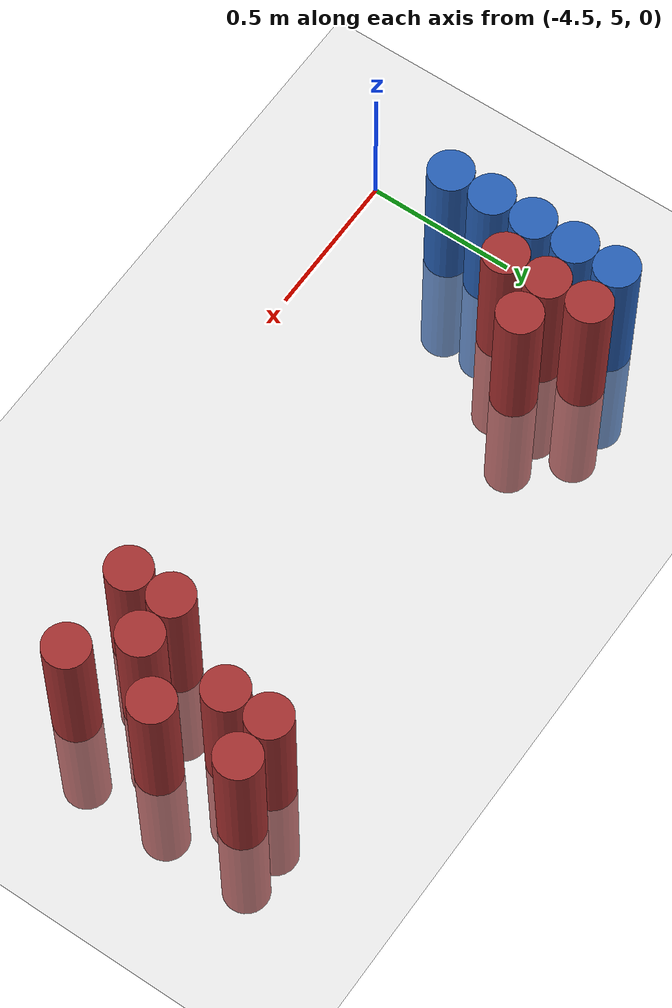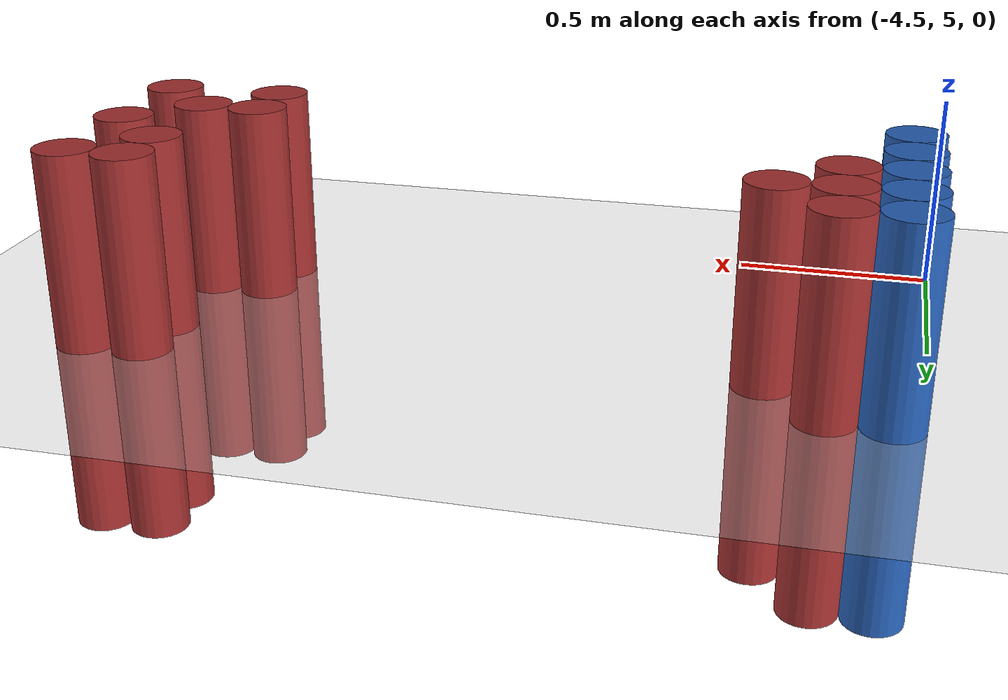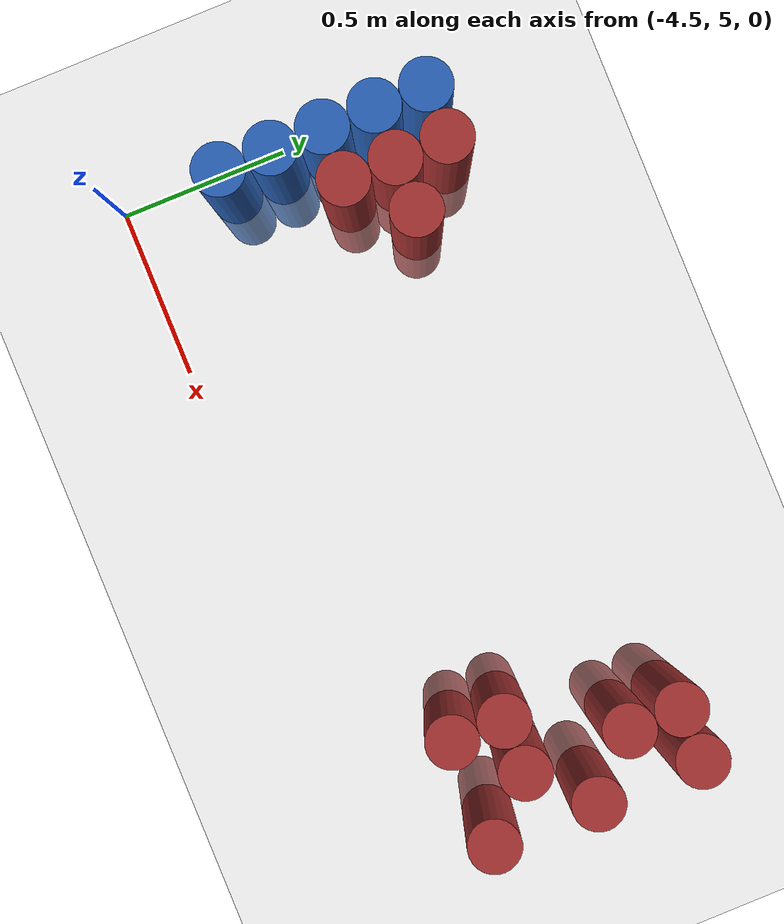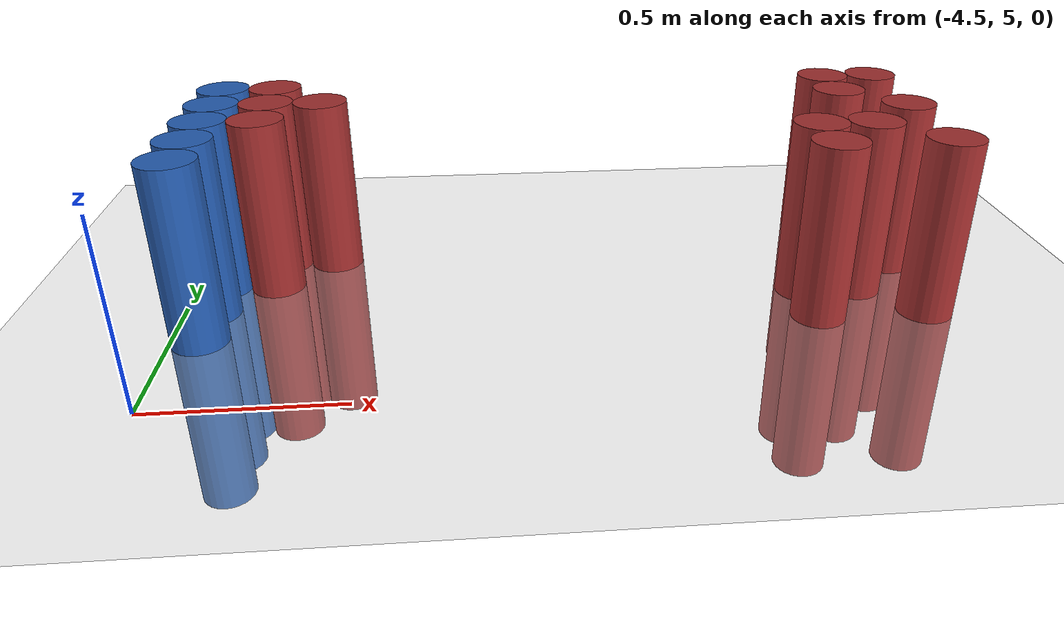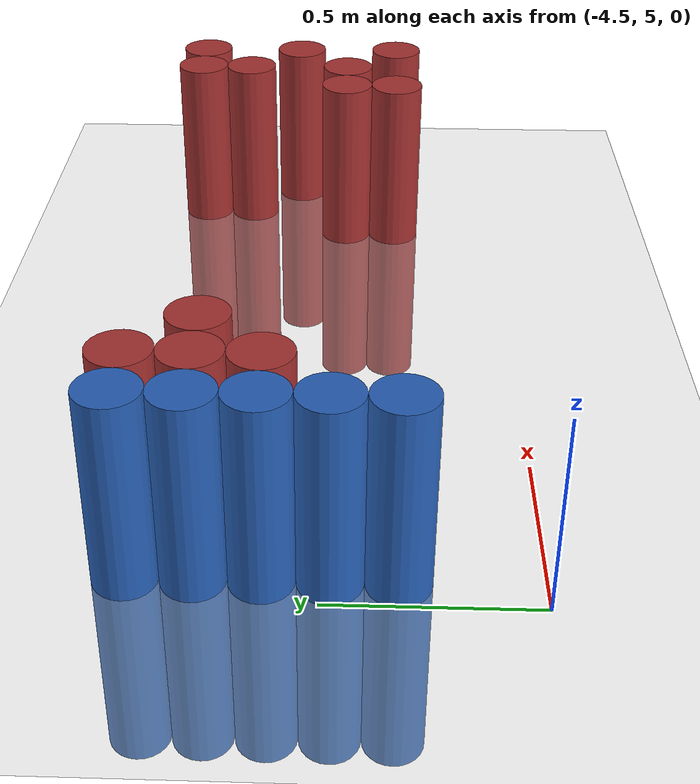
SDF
<sdf version="1.6">
 <world name="default">
  <model name="ground_plane">
   <static>1</static>
   <link name="link">
    <collision name="collision">
     <geometry><plane><normal>0 0 1</normal><size>100 100</size></plane></geometry>
     <surface><friction><ode><mu>100</mu><mu2>50</mu2></ode></friction></surface>
    </collision>
    <visual name="visual">
     <cast_shadows>0</cast_shadows>
     <geometry><plane><normal>0 0 1</normal><size>100 100</size></plane></geometry>
     <material>
      <script><uri>file://media/materials/scripts/gazebo.material</uri><name>Gazebo/Grey</name></script>
     </material>
    </visual>
   </link>
  </model>
  <model name="unit_cylinder_97">
   <static>1</static>
   <pose>-4.425000 5.325000 0.000000 0.000000 0.000000 0.000000</pose>
   <link name="link">
    <inertial>
     <mass>1</mass>
     <inertia><ixx>0.145833</ixx><ixy>0</ixy><ixz>0</ixz><iyy>0.145833</iyy><iyz>0</iyz><izz>0.125</izz></inertia>
    </inertial>
    <collision name="collision">
     <geometry><cylinder><radius>0.075000</radius><length>1</length></cylinder></geometry>
    </collision>
    <visual name="visual">
     <geometry><cylinder><radius>0.075000</radius><length>1</length></cylinder></geometry>
     <material>
      <ambient>0.152000 0.379000 0.720000 1</ambient>
      <diffuse>0.152000 0.379000 0.720000 1</diffuse>
     </material>
     <material>
      <script><name>Gazebo/Grey</name><uri>file://media/materials/scripts/gazebo.material</uri></script>
     </material>
    </visual>
   </link>
  </model>
  <model name="unit_cylinder_98">
   <static>1</static>
   <pose>-4.425000 5.475000 0.000000 0.000000 0.000000 0.000000</pose>
   <link name="link">
    <inertial>
     <mass>1</mass>
     <inertia><ixx>0.145833</ixx><ixy>0</ixy><ixz>0</ixz><iyy>0.145833</iyy><iyz>0</iyz><izz>0.125</izz></inertia>
    </inertial>
    <collision name="collision">
     <geometry><cylinder><radius>0.075000</radius><length>1</length></cylinder></geometry>
    </collision>
    <visual name="visual">
     <geometry><cylinder><radius>0.075000</radius><length>1</length></cylinder></geometry>
     <material>
      <ambient>0.152000 0.379000 0.720000 1</ambient>
      <diffuse>0.152000 0.379000 0.720000 1</diffuse>
     </material>
     <material>
      <script><name>Gazebo/Grey</name><uri>file://media/materials/scripts/gazebo.material</uri></script>
     </material>
    </visual>
   </link>
  </model>
  <model name="unit_cylinder_99">
   <static>1</static>
   <pose>-4.425000 5.625000 0.000000 0.000000 0.000000 0.000000</pose>
   <link name="link">
    <inertial>
     <mass>1</mass>
     <inertia><ixx>0.145833</ixx><ixy>0</ixy><ixz>0</ixz><iyy>0.145833</iyy><iyz>0</iyz><izz>0.125</izz></inertia>
    </inertial>
    <collision name="collision">
     <geometry><cylinder><radius>0.075000</radius><length>1</length></cylinder></geometry>
    </collision>
    <visual name="visual">
     <geometry><cylinder><radius>0.075000</radius><length>1</length></cylinder></geometry>
     <material>
      <ambient>0.152000 0.379000 0.720000 1</ambient>
      <diffuse>0.152000 0.379000 0.720000 1</diffuse>
     </material>
     <material>
      <script><name>Gazebo/Grey</name><uri>file://media/materials/scripts/gazebo.material</uri></script>
     </material>
    </visual>
   </link>
  </model>
  <model name="unit_cylinder_100">
   <static>1</static>
   <pose>-4.425000 5.775000 0.000000 0.000000 0.000000 0.000000</pose>
   <link name="link">
    <inertial>
     <mass>1</mass>
     <inertia><ixx>0.145833</ixx><ixy>0</ixy><ixz>0</ixz><iyy>0.145833</iyy><iyz>0</iyz><izz>0.125</izz></inertia>
    </inertial>
    <collision name="collision">
     <geometry><cylinder><radius>0.075000</radius><length>1</length></cylinder></geometry>
    </collision>
    <visual name="visual">
     <geometry><cylinder><radius>0.075000</radius><length>1</length></cylinder></geometry>
     <material>
      <ambient>0.152000 0.379000 0.720000 1</ambient>
      <diffuse>0.152000 0.379000 0.720000 1</diffuse>
     </material>
     <material>
      <script><name>Gazebo/Grey</name><uri>file://media/materials/scripts/gazebo.material</uri></script>
     </material>
    </visual>
   </link>
  </model>
  <model name="unit_cylinder_101">
   <static>1</static>
   <pose>-4.425000 5.925000 0.000000 0.000000 0.000000 0.000000</pose>
   <link name="link">
    <inertial>
     <mass>1</mass>
     <inertia><ixx>0.145833</ixx><ixy>0</ixy><ixz>0</ixz><iyy>0.145833</iyy><iyz>0</iyz><izz>0.125</izz></inertia>
    </inertial>
    <collision name="collision">
     <geometry><cylinder><radius>0.075000</radius><length>1</length></cylinder></geometry>
    </collision>
    <visual name="visual">
     <geometry><cylinder><radius>0.075000</radius><length>1</length></cylinder></geometry>
     <material>
      <ambient>0.152000 0.379000 0.720000 1</ambient>
      <diffuse>0.152000 0.379000 0.720000 1</diffuse>
     </material>
     <material>
      <script><name>Gazebo/Grey</name><uri>file://media/materials/scripts/gazebo.material</uri></script>
     </material>
    </visual>
   </link>
  </model>
  <model name="unit_cylinder_126">
   <static>1</static>
   <pose>-4.275000 5.625000 0.000000 0.000000 0.000000 0.000000</pose>
   <link name="link">
    <inertial>
     <mass>1</mass>
     <inertia><ixx>0.145833</ixx><ixy>0</ixy><ixz>0</ixz><iyy>0.145833</iyy><iyz>0</iyz><izz>0.125</izz></inertia>
    </inertial>
    <collision name="collision">
     <geometry><cylinder><radius>0.075000</radius><length>1</length></cylinder></geometry>
    </collision>
    <visual name="visual">
     <geometry><cylinder><radius>0.075000</radius><length>1</length></cylinder></geometry>
     <material>
      <ambient>0.648000 0.192000 0.192000 1</ambient>
      <diffuse>0.648000 0.192000 0.192000 1</diffuse>
     </material>
     <material>
      <script><name>Gazebo/Grey</name><uri>file://media/materials/scripts/gazebo.material</uri></script>
     </material>
    </visual>
   </link>
  </model>
  <model name="unit_cylinder_127">
   <static>1</static>
   <pose>-4.275000 5.775000 0.000000 0.000000 0.000000 0.000000</pose>
   <link name="link">
    <inertial>
     <mass>1</mass>
     <inertia><ixx>0.145833</ixx><ixy>0</ixy><ixz>0</ixz><iyy>0.145833</iyy><iyz>0</iyz><izz>0.125</izz></inertia>
    </inertial>
    <collision name="collision">
     <geometry><cylinder><radius>0.075000</radius><length>1</length></cylinder></geometry>
    </collision>
    <visual name="visual">
     <geometry><cylinder><radius>0.075000</radius><length>1</length></cylinder></geometry>
     <material>
      <ambient>0.648000 0.192000 0.192000 1</ambient>
      <diffuse>0.648000 0.192000 0.192000 1</diffuse>
     </material>
     <material>
      <script><name>Gazebo/Grey</name><uri>file://media/materials/scripts/gazebo.material</uri></script>
     </material>
    </visual>
   </link>
  </model>
  <model name="unit_cylinder_128">
   <static>1</static>
   <pose>-4.275000 5.925000 0.000000 0.000000 0.000000 0.000000</pose>
   <link name="link">
    <inertial>
     <mass>1</mass>
     <inertia><ixx>0.145833</ixx><ixy>0</ixy><ixz>0</ixz><iyy>0.145833</iyy><iyz>0</iyz><izz>0.125</izz></inertia>
    </inertial>
    <collision name="collision">
     <geometry><cylinder><radius>0.075000</radius><length>1</length></cylinder></geometry>
    </collision>
    <visual name="visual">
     <geometry><cylinder><radius>0.075000</radius><length>1</length></cylinder></geometry>
     <material>
      <ambient>0.648000 0.192000 0.192000 1</ambient>
      <diffuse>0.648000 0.192000 0.192000 1</diffuse>
     </material>
     <material>
      <script><name>Gazebo/Grey</name><uri>file://media/materials/scripts/gazebo.material</uri></script>
     </material>
    </visual>
   </link>
  </model>
  <model name="unit_cylinder_143">
   <static>1</static>
   <pose>-4.125000 5.775000 0.000000 0.000000 0.000000 0.000000</pose>
   <link name="link">
    <inertial>
     <mass>1</mass>
     <inertia><ixx>0.145833</ixx><ixy>0</ixy><ixz>0</ixz><iyy>0.145833</iyy><iyz>0</iyz><izz>0.125</izz></inertia>
    </inertial>
    <collision name="collision">
     <geometry><cylinder><radius>0.075000</radius><length>1</length></cylinder></geometry>
    </collision>
    <visual name="visual">
     <geometry><cylinder><radius>0.075000</radius><length>1</length></cylinder></geometry>
     <material>
      <ambient>0.648000 0.192000 0.192000 1</ambient>
      <diffuse>0.648000 0.192000 0.192000 1</diffuse>
     </material>
     <material>
      <script><name>Gazebo/Grey</name><uri>file://media/materials/scripts/gazebo.material</uri></script>
     </material>
    </visual>
   </link>
  </model>
  <model name="unit_cylinder_182">
   <static>1</static>
   <pose>-2.775000 5.325000 0.000000 0.000000 0.000000 0.000000</pose>
   <link name="link">
    <inertial>
     <mass>1</mass>
     <inertia><ixx>0.145833</ixx><ixy>0</ixy><ixz>0</ixz><iyy>0.145833</iyy><iyz>0</iyz><izz>0.125</izz></inertia>
    </inertial>
    <collision name="collision">
     <geometry><cylinder><radius>0.075000</radius><length>1</length></cylinder></geometry>
    </collision>
    <visual name="visual">
     <geometry><cylinder><radius>0.075000</radius><length>1</length></cylinder></geometry>
     <material>
      <ambient>0.648000 0.192000 0.192000 1</ambient>
      <diffuse>0.648000 0.192000 0.192000 1</diffuse>
     </material>
     <material>
      <script><name>Gazebo/Grey</name><uri>file://media/materials/scripts/gazebo.material</uri></script>
     </material>
    </visual>
   </link>
  </model>
  <model name="unit_cylinder_183">
   <static>1</static>
   <pose>-2.775000 5.475000 0.000000 0.000000 0.000000 0.000000</pose>
   <link name="link">
    <inertial>
     <mass>1</mass>
     <inertia><ixx>0.145833</ixx><ixy>0</ixy><ixz>0</ixz><iyy>0.145833</iyy><iyz>0</iyz><izz>0.125</izz></inertia>
    </inertial>
    <collision name="collision">
     <geometry><cylinder><radius>0.075000</radius><length>1</length></cylinder></geometry>
    </collision>
    <visual name="visual">
     <geometry><cylinder><radius>0.075000</radius><length>1</length></cylinder></geometry>
     <material>
      <ambient>0.648000 0.192000 0.192000 1</ambient>
      <diffuse>0.648000 0.192000 0.192000 1</diffuse>
     </material>
     <material>
      <script><name>Gazebo/Grey</name><uri>file://media/materials/scripts/gazebo.material</uri></script>
     </material>
    </visual>
   </link>
  </model>
  <model name="unit_cylinder_190">
   <static>1</static>
   <pose>-2.625000 5.475000 0.000000 0.000000 0.000000 0.000000</pose>
   <link name="link">
    <inertial>
     <mass>1</mass>
     <inertia><ixx>0.145833</ixx><ixy>0</ixy><ixz>0</ixz><iyy>0.145833</iyy><iyz>0</iyz><izz>0.125</izz></inertia>
    </inertial>
    <collision name="collision">
     <geometry><cylinder><radius>0.075000</radius><length>1</length></cylinder></geometry>
    </collision>
    <visual name="visual">
     <geometry><cylinder><radius>0.075000</radius><length>1</length></cylinder></geometry>
     <material>
      <ambient>0.648000 0.192000 0.192000 1</ambient>
      <diffuse>0.648000 0.192000 0.192000 1</diffuse>
     </material>
     <material>
      <script><name>Gazebo/Grey</name><uri>file://media/materials/scripts/gazebo.material</uri></script>
     </material>
    </visual>
   </link>
  </model>
  <model name="unit_cylinder_191">
   <static>1</static>
   <pose>-2.625000 5.775000 0.000000 0.000000 0.000000 0.000000</pose>
   <link name="link">
    <inertial>
     <mass>1</mass>
     <inertia><ixx>0.145833</ixx><ixy>0</ixy><ixz>0</ixz><iyy>0.145833</iyy><iyz>0</iyz><izz>0.125</izz></inertia>
    </inertial>
    <collision name="collision">
     <geometry><cylinder><radius>0.075000</radius><length>1</length></cylinder></geometry>
    </collision>
    <visual name="visual">
     <geometry><cylinder><radius>0.075000</radius><length>1</length></cylinder></geometry>
     <material>
      <ambient>0.648000 0.192000 0.192000 1</ambient>
      <diffuse>0.648000 0.192000 0.192000 1</diffuse>
     </material>
     <material>
      <script><name>Gazebo/Grey</name><uri>file://media/materials/scripts/gazebo.material</uri></script>
     </material>
    </visual>
   </link>
  </model>
  <model name="unit_cylinder_192">
   <static>1</static>
   <pose>-2.625000 5.925000 0.000000 0.000000 0.000000 0.000000</pose>
   <link name="link">
    <inertial>
     <mass>1</mass>
     <inertia><ixx>0.145833</ixx><ixy>0</ixy><ixz>0</ixz><iyy>0.145833</iyy><iyz>0</iyz><izz>0.125</izz></inertia>
    </inertial>
    <collision name="collision">
     <geometry><cylinder><radius>0.075000</radius><length>1</length></cylinder></geometry>
    </collision>
    <visual name="visual">
     <geometry><cylinder><radius>0.075000</radius><length>1</length></cylinder></geometry>
     <material>
      <ambient>0.648000 0.192000 0.192000 1</ambient>
      <diffuse>0.648000 0.192000 0.192000 1</diffuse>
     </material>
     <material>
      <script><name>Gazebo/Grey</name><uri>file://media/materials/scripts/gazebo.material</uri></script>
     </material>
    </visual>
   </link>
  </model>
  <model name="unit_cylinder_194">
   <static>1</static>
   <pose>-2.475000 5.325000 0.000000 0.000000 0.000000 0.000000</pose>
   <link name="link">
    <inertial>
     <mass>1</mass>
     <inertia><ixx>0.145833</ixx><ixy>0</ixy><ixz>0</ixz><iyy>0.145833</iyy><iyz>0</iyz><izz>0.125</izz></inertia>
    </inertial>
    <collision name="collision">
     <geometry><cylinder><radius>0.075000</radius><length>1</length></cylinder></geometry>
    </collision>
    <visual name="visual">
     <geometry><cylinder><radius>0.075000</radius><length>1</length></cylinder></geometry>
     <material>
      <ambient>0.648000 0.192000 0.192000 1</ambient>
      <diffuse>0.648000 0.192000 0.192000 1</diffuse>
     </material>
     <material>
      <script><name>Gazebo/Grey</name><uri>file://media/materials/scripts/gazebo.material</uri></script>
     </material>
    </visual>
   </link>
  </model>
  <model name="unit_cylinder_195">
   <static>1</static>
   <pose>-2.475000 5.625000 0.000000 0.000000 0.000000 0.000000</pose>
   <link name="link">
    <inertial>
     <mass>1</mass>
     <inertia><ixx>0.145833</ixx><ixy>0</ixy><ixz>0</ixz><iyy>0.145833</iyy><iyz>0</iyz><izz>0.125</izz></inertia>
    </inertial>
    <collision name="collision">
     <geometry><cylinder><radius>0.075000</radius><length>1</length></cylinder></geometry>
    </collision>
    <visual name="visual">
     <geometry><cylinder><radius>0.075000</radius><length>1</length></cylinder></geometry>
     <material>
      <ambient>0.648000 0.192000 0.192000 1</ambient>
      <diffuse>0.648000 0.192000 0.192000 1</diffuse>
     </material>
     <material>
      <script><name>Gazebo/Grey</name><uri>file://media/materials/scripts/gazebo.material</uri></script>
     </material>
    </visual>
   </link>
  </model>
  <model name="unit_cylinder_196">
   <static>1</static>
   <pose>-2.475000 5.925000 0.000000 0.000000 0.000000 0.000000</pose>
   <link name="link">
    <inertial>
     <mass>1</mass>
     <inertia><ixx>0.145833</ixx><ixy>0</ixy><ixz>0</ixz><iyy>0.145833</iyy><iyz>0</iyz><izz>0.125</izz></inertia>
    </inertial>
    <collision name="collision">
     <geometry><cylinder><radius>0.075000</radius><length>1</length></cylinder></geometry>
    </collision>
    <visual name="visual">
     <geometry><cylinder><radius>0.075000</radius><length>1</length></cylinder></geometry>
     <material>
      <ambient>0.648000 0.192000 0.192000 1</ambient>
      <diffuse>0.648000 0.192000 0.192000 1</diffuse>
     </material>
     <material>
      <script><name>Gazebo/Grey</name><uri>file://media/materials/scripts/gazebo.material</uri></script>
     </material>
    </visual>
   </link>
  </model>
 </world>
</sdf>
